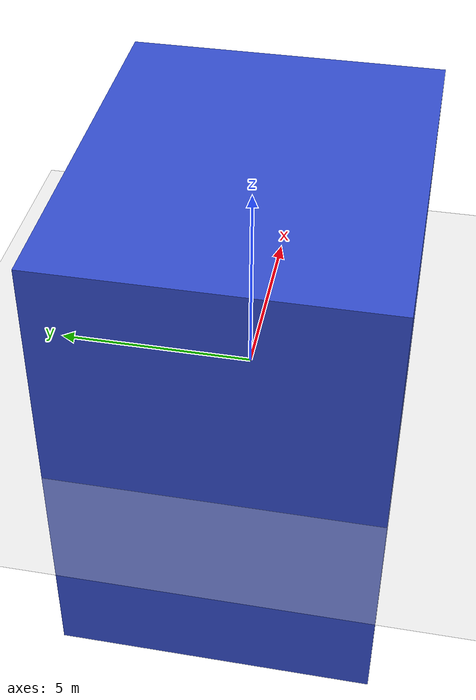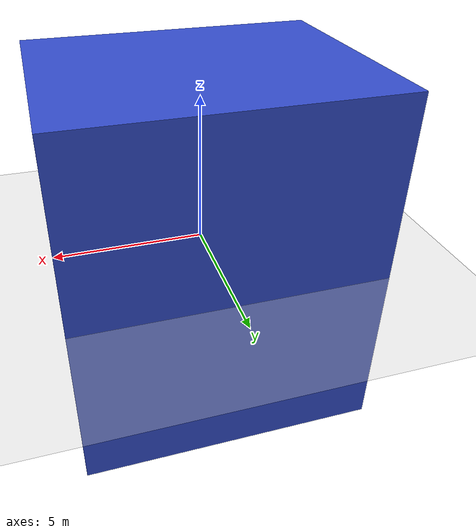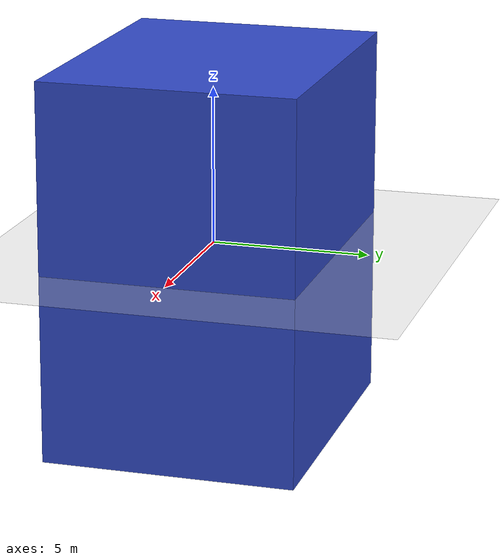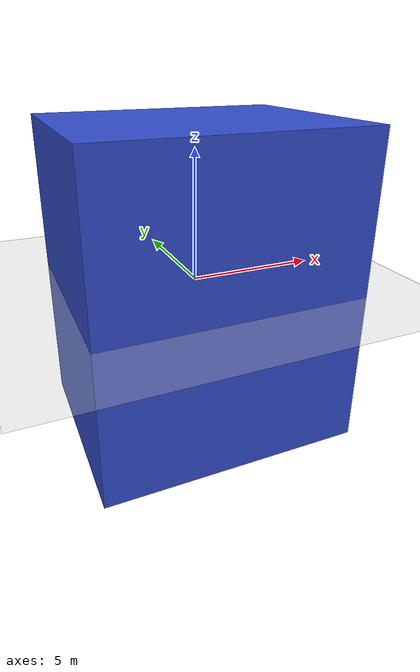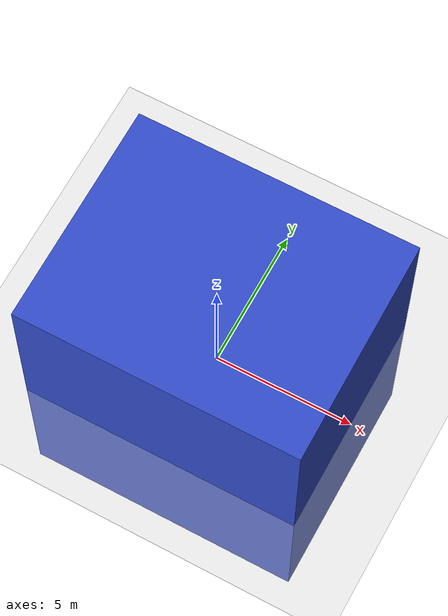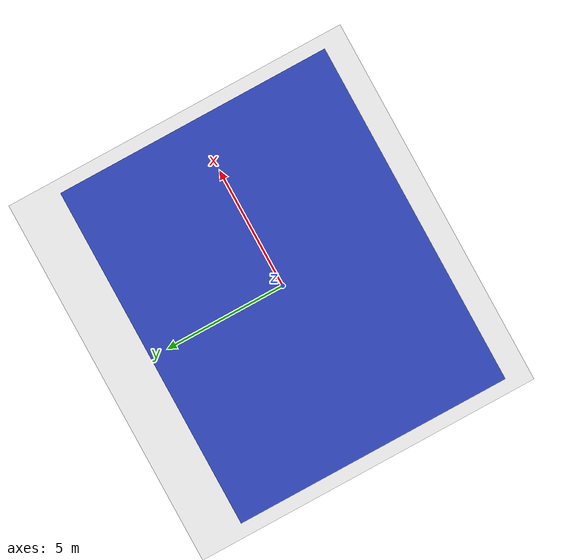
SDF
<?xml version="1.0"?>
<sdf version="1.6">
  <world name="first_world">
    <plugin
      filename="gz-sim-physics-system"
      name="gz::sim::systems::Physics">
    </plugin>

    <plugin
      filename="gz-sim-user-commands-system"
      name="gz::sim::systems::UserCommands">
    </plugin>

    <plugin
      filename="gz-sim-scene-broadcaster-system"
      name="gz::sim::systems::SceneBroadcaster">
    </plugin>

    <light type="directional" name="sun">
        <cast_shadows>true</cast_shadows>
        <pose>0 0 10 0 0 0</pose>
        <diffuse>0.8 0.8 0.8 1</diffuse>
        <specular>0.2 0.2 0.2 1</specular>
        <attenuation>
            <range>1000</range>
            <constant>0.9</constant>
            <linear>0.01</linear>
            <quadratic>0.001</quadratic>
        </attenuation>
        <direction>-0.5 0.1 -0.9</direction>
    </light>

    <model name="ground_plane">
        <static>true</static>
        <link name="link">
            <collision name="collision">
                <geometry>
                    <plane>
                        <normal>0 0 1</normal>
                        <size>100 100</size>
                    </plane>
                </geometry>
                <surface>
                    <friction>
                        <ode>
                            <mu>200</mu>
                            <mu2>100</mu2>
                        </ode>
                    </friction>
                </surface>
            </collision>
            <visual name="visual">
                <cast_shadows>false</cast_shadows>
                <geometry>
                    <plane>
                        <normal>0 0 1</normal>
                        <size>100 100</size>
                    </plane>
                </geometry>
                <material>
                    <script>
                        <uri>file://media/materials/scripts/gazebo.material</uri>
                        <name>Gazebo/Grey</name>
                    </script>
                </material>
            </visual>
        </link>
    </model>

    <model name="dummybot_building">
      <static>1</static>
      <include>
        <pose>0 0 0 0 0 0</pose>
        <uri>model://simple_building</uri>
      </include>
    </model>
  </world>
</sdf>

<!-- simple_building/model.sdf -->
<sdf version="1.9">
	<model name="simple_building">
		<pose>0 0 6 0 0 0</pose>
		<static>true</static>
		<link name="link">
			<collision name="col">
				<geometry>
					<box>
						<size>10 8 12</size>
					</box>
				</geometry>
			</collision>
			<visual name="vis">
				<geometry>
					<box>
						<size>10 8 12</size>
					</box>
				</geometry>
				<material>
					<ambient>0.2 0.3 0.8 1</ambient>
					<diffuse>0.2 0.3 0.8 1</diffuse>
				</material>
			</visual>
		</link>
	</model>
</sdf>
